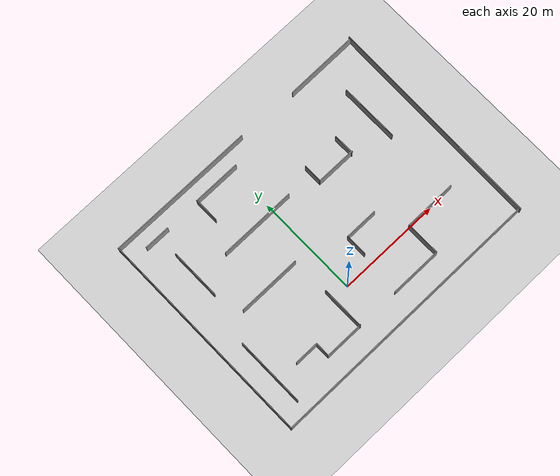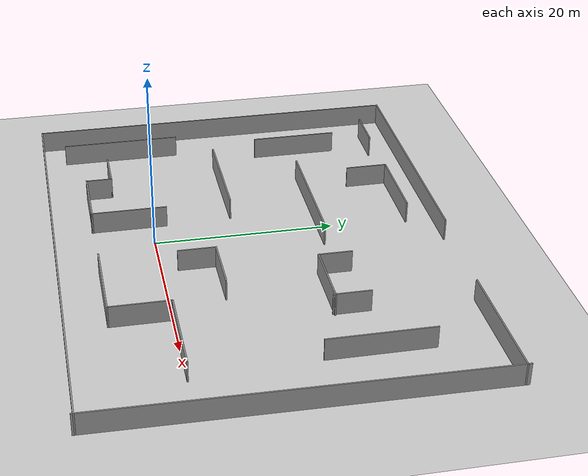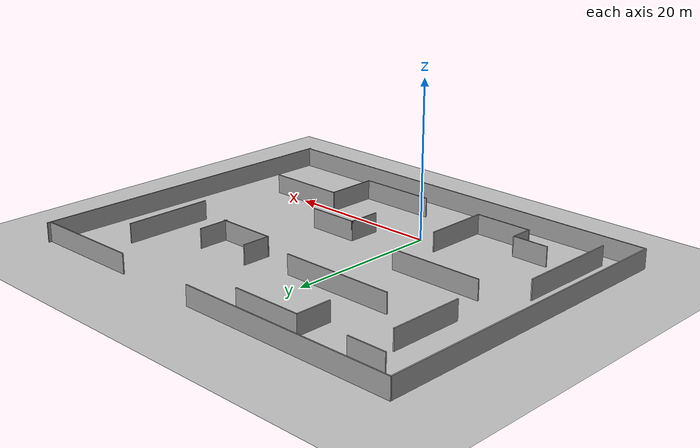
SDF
<sdf version="1.6">
 <world name="default">
  <light name="sun" type="directional">
   <pose>0 0 10 0 -0 0</pose>
   <diffuse>0.8 0.8 0.8 1</diffuse>
   <specular>0.2 0.2 0.2 1</specular>
   <attenuation>
    <range>1000</range>
    <constant>0.9</constant>
    <linear>0.01</linear>
    <quadratic>0.001</quadratic>
   </attenuation>
   <direction>-0.5 0.1 -0.9</direction>
  </light>
  <model name="ground_plane">
   <static>1</static>
   <link name="link">
    <collision name="collision">
     <geometry><plane><normal>0 0 1</normal><size>100 100</size></plane></geometry>
     <surface>
      <contact><collide_bitmask>65535</collide_bitmask></contact>
      <friction><ode><mu>100</mu><mu2>50</mu2></ode></friction>
     </surface>
    </collision>
    <visual name="visual">
     <cast_shadows>0</cast_shadows>
     <geometry><plane><normal>0 0 1</normal><size>100 100</size></plane></geometry>
     <material>
      <script><uri>file://media/materials/scripts/gazebo.material</uri><name>Gazebo/Grey</name></script>
     </material>
    </visual>
   </link>
  </model>
  <gravity>0 0 -9.8</gravity>
  <magnetic_field>6e-06 2.3e-05 -4.2e-05</magnetic_field>
  <atmosphere type="adiabatic"/>
  <physics name="default_physics" default="0" type="ode">
   <max_step_size>0.001</max_step_size>
   <real_time_factor>1</real_time_factor>
   <real_time_update_rate>1000</real_time_update_rate>
  </physics>
  <scene><ambient>0.4 0.4 0.4 1</ambient><background>0.7 0.7 0.7 1</background><shadows>1</shadows></scene>
  <spherical_coordinates>
   <surface_model>EARTH_WGS84</surface_model>
   <latitude_deg>0</latitude_deg>
   <longitude_deg>0</longitude_deg>
   <elevation>0</elevation>
   <heading_deg>0</heading_deg>
  </spherical_coordinates>
  <model name="Untitled">
   <pose>3.70231 10.2651 0 0 -0 0</pose>
   <link name="Wall_1">
    <collision name="Wall_1_Collision">
     <geometry><box><size>43.0154 0.15 2.5</size></box></geometry>
     <pose>0 0 1.25 0 -0 0</pose>
    </collision>
    <visual name="Wall_1_Visual">
     <pose>0 0 1.25 0 -0 0</pose>
     <geometry><box><size>43.0154 0.15 2.5</size></box></geometry>
     <material>
      <script><uri>file://media/materials/scripts/gazebo.material</uri><name>Gazebo/Grey</name></script>
      <ambient>1 1 1 1</ambient>
     </material>
     <meta><layer>0</layer></meta>
    </visual>
    <pose>27.1722 0 0 0 -0 -1.58648</pose>
   </link>
   <link name="Wall_11">
    <collision name="Wall_11_Collision">
     <geometry><box><size>4.25 0.15 2.5</size></box></geometry>
     <pose>0 0 1.25 0 -0 0</pose>
    </collision>
    <visual name="Wall_11_Visual">
     <pose>0 0 1.25 0 -0 0</pose>
     <geometry><box><size>4.25 0.15 2.5</size></box></geometry>
     <material>
      <script><uri>file://media/materials/scripts/gazebo.material</uri><name>Gazebo/Grey</name></script>
      <ambient>1 1 1 1</ambient>
     </material>
     <meta><layer>0</layer></meta>
    </visual>
    <pose>2.08355 -6.37855 0 0 -0 1.5708</pose>
   </link>
   <link name="Wall_12">
    <collision name="Wall_12_Collision">
     <geometry><box><size>6.5 0.15 2.5</size></box></geometry>
     <pose>0 0 1.25 0 -0 0</pose>
    </collision>
    <visual name="Wall_12_Visual">
     <pose>0 0 1.25 0 -0 0</pose>
     <geometry><box><size>6.5 0.15 2.5</size></box></geometry>
     <material>
      <script><uri>file://media/materials/scripts/gazebo.material</uri><name>Gazebo/Grey</name></script>
      <ambient>1 1 1 1</ambient>
     </material>
     <meta><layer>0</layer></meta>
    </visual>
    <pose>5.25855 -4.32855 0 0 -0 0</pose>
   </link>
   <link name="Wall_19">
    <collision name="Wall_19_Collision">
     <geometry><box><size>14.4168 0.15 2.5</size></box></geometry>
     <pose>0 0 1.25 0 -0 0</pose>
    </collision>
    <visual name="Wall_19_Visual">
     <pose>0 0 1.25 0 -0 0</pose>
     <geometry><box><size>14.4168 0.15 2.5</size></box></geometry>
     <material>
      <script><uri>file://media/materials/scripts/gazebo.material</uri><name>Gazebo/Grey</name></script>
      <ambient>1 1 1 1</ambient>
     </material>
     <meta><layer>0</layer></meta>
    </visual>
    <pose>20.3752 20.9955 0 0 -0 -3.13314</pose>
   </link>
   <link name="Wall_25">
    <collision name="Wall_25_Collision">
     <geometry><box><size>13.5 0.15 2.5</size></box></geometry>
     <pose>0 0 1.25 0 -0 0</pose>
    </collision>
    <visual name="Wall_25_Visual">
     <pose>0 0 1.25 0 -0 0</pose>
     <geometry><box><size>13.5 0.15 2.5</size></box></geometry>
     <material>
      <script><uri>file://media/materials/scripts/gazebo.material</uri><name>Gazebo/Grey</name></script>
      <ambient>1 1 1 1</ambient>
     </material>
     <meta><layer>0</layer></meta>
    </visual>
    <pose>-23.5603 -11.9274 0 0 -0 1.5708</pose>
   </link>
   <link name="Wall_29">
    <collision name="Wall_29_Collision">
     <geometry><box><size>12.25 0.15 2.5</size></box></geometry>
     <pose>0 0 1.25 0 -0 0</pose>
    </collision>
    <visual name="Wall_29_Visual">
     <pose>0 0 1.25 0 -0 0</pose>
     <geometry><box><size>12.25 0.15 2.5</size></box></geometry>
     <material>
      <script><uri>file://media/materials/scripts/gazebo.material</uri><name>Gazebo/Grey</name></script>
      <ambient>1 1 1 1</ambient>
     </material>
     <meta><layer>0</layer></meta>
    </visual>
    <pose>-13.4644 -1.18297 0 0 -0 0</pose>
   </link>
   <link name="Wall_31">
    <collision name="Wall_31_Collision">
     <geometry><box><size>15 0.15 2.5</size></box></geometry>
     <pose>0 0 1.25 0 -0 0</pose>
    </collision>
    <visual name="Wall_31_Visual">
     <pose>0 0 1.25 0 -0 0</pose>
     <geometry><box><size>15 0.15 2.5</size></box></geometry>
     <material>
      <script><uri>file://media/materials/scripts/gazebo.material</uri><name>Gazebo/Grey</name></script>
      <ambient>1 1 1 1</ambient>
     </material>
     <meta><layer>0</layer></meta>
    </visual>
    <pose>-7.46753 8.10342 0 0 -0 0</pose>
   </link>
   <link name="Wall_33">
    <collision name="Wall_33_Collision">
     <geometry><box><size>9.75 0.15 2.5</size></box></geometry>
     <pose>0 0 1.25 0 -0 0</pose>
    </collision>
    <visual name="Wall_33_Visual">
     <pose>0 0 1.25 0 -0 0</pose>
     <geometry><box><size>9.75 0.15 2.5</size></box></geometry>
     <material>
      <script><uri>file://media/materials/scripts/gazebo.material</uri><name>Gazebo/Grey</name></script>
      <ambient>1 1 1 1</ambient>
     </material>
     <meta><layer>0</layer></meta>
    </visual>
    <pose>-21.1585 9.0809 0 0 -0 -1.5708</pose>
   </link>
   <link name="Wall_37">
    <collision name="Wall_37_Collision">
     <geometry><box><size>3.5872 0.15 2.5</size></box></geometry>
     <pose>0 0 1.25 0 -0 0</pose>
    </collision>
    <visual name="Wall_37_Visual">
     <pose>0 0 1.25 0 -0 0</pose>
     <geometry><box><size>3.5872 0.15 2.5</size></box></geometry>
     <material>
      <script><uri>file://media/materials/scripts/gazebo.material</uri><name>Gazebo/Grey</name></script>
      <ambient>1 1 1 1</ambient>
     </material>
     <meta><layer>0</layer></meta>
    </visual>
    <pose>5.54394 7.96889 0 0 -0 -1.5708</pose>
   </link>
   <link name="Wall_38">
    <collision name="Wall_38_Collision">
     <geometry><box><size>7.80888 0.15 2.5</size></box></geometry>
     <pose>0 0 1.25 0 -0 0</pose>
    </collision>
    <visual name="Wall_38_Visual">
     <pose>0 0 1.25 0 -0 0</pose>
     <geometry><box><size>7.80888 0.15 2.5</size></box></geometry>
     <material>
      <script><uri>file://media/materials/scripts/gazebo.material</uri><name>Gazebo/Grey</name></script>
      <ambient>1 1 1 1</ambient>
     </material>
     <meta><layer>0</layer></meta>
    </visual>
    <pose>9.37338 6.08755 0 0 -0 0</pose>
   </link>
   <link name="Wall_39">
    <collision name="Wall_39_Collision">
     <geometry><box><size>4.0872 0.15 2.5</size></box></geometry>
     <pose>0 0 1.25 0 -0 0</pose>
    </collision>
    <visual name="Wall_39_Visual">
     <pose>0 0 1.25 0 -0 0</pose>
     <geometry><box><size>4.0872 0.15 2.5</size></box></geometry>
     <material>
      <script><uri>file://media/materials/scripts/gazebo.material</uri><name>Gazebo/Grey</name></script>
      <ambient>1 1 1 1</ambient>
     </material>
     <meta><layer>0</layer></meta>
    </visual>
    <pose>13.0401 7.89341 0 0 -0 1.5708</pose>
   </link>
   <link name="Wall_44">
    <collision name="Wall_44_Collision">
     <geometry><box><size>5 0.15 2.5</size></box></geometry>
     <pose>0 0 1.25 0 -0 0</pose>
    </collision>
    <visual name="Wall_44_Visual">
     <pose>0 0 1.25 0 -0 0</pose>
     <geometry><box><size>5 0.15 2.5</size></box></geometry>
     <material>
      <script><uri>file://media/materials/scripts/gazebo.material</uri><name>Gazebo/Grey</name></script>
      <ambient>1 1 1 1</ambient>
     </material>
     <meta><layer>0</layer></meta>
    </visual>
    <pose>-21.5262 18.1838 0 0 -0 0</pose>
   </link>
   <link name="Wall_46">
    <collision name="Wall_46_Collision">
     <geometry><box><size>29 0.15 2.5</size></box></geometry>
     <pose>0 0 1.25 0 -0 0</pose>
    </collision>
    <visual name="Wall_46_Visual">
     <pose>0 0 1.25 0 -0 0</pose>
     <geometry><box><size>29 0.15 2.5</size></box></geometry>
     <material>
      <script><uri>file://media/materials/scripts/gazebo.material</uri><name>Gazebo/Grey</name></script>
      <ambient>1 1 1 1</ambient>
     </material>
     <meta><layer>0</layer></meta>
    </visual>
    <pose>-13.0845 21.377 0 0 -0 3.14159</pose>
   </link>
   <link name="Wall_47">
    <collision name="Wall_47_Collision">
     <geometry><box><size>42.75 0.15 2.5</size></box></geometry>
     <pose>0 0 1.25 0 -0 0</pose>
    </collision>
    <visual name="Wall_47_Visual">
     <pose>0 0 1.25 0 -0 0</pose>
     <geometry><box><size>42.75 0.15 2.5</size></box></geometry>
     <material>
      <script><uri>file://media/materials/scripts/gazebo.material</uri><name>Gazebo/Grey</name></script>
      <ambient>1 1 1 1</ambient>
     </material>
     <meta><layer>0</layer></meta>
    </visual>
    <pose>-27.5095 0.076975 0 0 -0 -1.5708</pose>
   </link>
   <link name="Wall_54">
    <collision name="Wall_54_Collision">
     <geometry><box><size>54.5 0.15 2.5</size></box></geometry>
     <pose>0 0 1.25 0 -0 0</pose>
    </collision>
    <visual name="Wall_54_Visual">
     <pose>0 0 1.25 0 -0 0</pose>
     <geometry><box><size>54.5 0.15 2.5</size></box></geometry>
     <material>
      <script><uri>file://media/materials/scripts/gazebo.material</uri><name>Gazebo/Grey</name></script>
      <ambient>1 1 1 1</ambient>
     </material>
     <meta><layer>0</layer></meta>
    </visual>
    <pose>-0.334496 -21.223 0 0 -0 0</pose>
   </link>
   <link name="Wall_56">
    <collision name="Wall_56_Collision">
     <geometry><box><size>11.5 0.15 2.5</size></box></geometry>
     <pose>0 0 1.25 0 -0 0</pose>
    </collision>
    <visual name="Wall_56_Visual">
     <pose>0 0 1.25 0 -0 0</pose>
     <geometry><box><size>11.5 0.15 2.5</size></box></geometry>
     <material>
      <script><uri>file://media/materials/scripts/gazebo.material</uri><name>Gazebo/Grey</name></script>
      <ambient>1 1 1 1</ambient>
     </material>
     <meta><layer>0</layer></meta>
    </visual>
    <pose>20.2685 8.99066 0 0 -0 -1.5708</pose>
   </link>
   <link name="Wall_58">
    <collision name="Wall_58_Collision">
     <geometry><box><size>9.25 0.15 2.5</size></box></geometry>
     <pose>0 0 1.25 0 -0 0</pose>
    </collision>
    <visual name="Wall_58_Visual">
     <pose>0 0 1.25 0 -0 0</pose>
     <geometry><box><size>9.25 0.15 2.5</size></box></geometry>
     <material>
      <script><uri>file://media/materials/scripts/gazebo.material</uri><name>Gazebo/Grey</name></script>
      <ambient>1 1 1 1</ambient>
     </material>
     <meta><layer>0</layer></meta>
    </visual>
    <pose>-7.55348 18.246 0 0 -0 3.14159</pose>
   </link>
   <link name="Wall_59">
    <collision name="Wall_59_Collision">
     <geometry><box><size>4.75 0.15 2.5</size></box></geometry>
     <pose>0 0 1.25 0 -0 0</pose>
    </collision>
    <visual name="Wall_59_Visual">
     <pose>0 0 1.25 0 -0 0</pose>
     <geometry><box><size>4.75 0.15 2.5</size></box></geometry>
     <material>
      <script><uri>file://media/materials/scripts/gazebo.material</uri><name>Gazebo/Grey</name></script>
      <ambient>1 1 1 1</ambient>
     </material>
     <meta><layer>0</layer></meta>
    </visual>
    <pose>-12.1035 15.946 0 0 -0 -1.5708</pose>
   </link>
   <link name="Wall_6">
    <collision name="Wall_6_Collision">
     <geometry><box><size>4.75 0.15 2.5</size></box></geometry>
     <pose>0 0 1.25 0 -0 0</pose>
    </collision>
    <visual name="Wall_6_Visual">
     <pose>0 0 1.25 0 -0 0</pose>
     <geometry><box><size>4.75 0.15 2.5</size></box></geometry>
     <material>
      <script><uri>file://media/materials/scripts/gazebo.material</uri><name>Gazebo/Grey</name></script>
      <ambient>1 1 1 1</ambient>
     </material>
     <meta><layer>0</layer></meta>
    </visual>
    <pose>-16.9164 -13.9285 0 0 -0 0</pose>
   </link>
   <link name="Wall_61">
    <collision name="Wall_61_Collision">
     <geometry><box><size>10.25 0.15 2.5</size></box></geometry>
     <pose>0 0 1.25 0 -0 0</pose>
    </collision>
    <visual name="Wall_61_Visual">
     <pose>0 0 1.25 0 -0 0</pose>
     <geometry><box><size>10.25 0.15 2.5</size></box></geometry>
     <material>
      <script><uri>file://media/materials/scripts/gazebo.material</uri><name>Gazebo/Grey</name></script>
      <ambient>1 1 1 1</ambient>
     </material>
     <meta><layer>0</layer></meta>
    </visual>
    <pose>16.0974 -10.1966 0 0 -0 3.14159</pose>
   </link>
   <link name="Wall_62">
    <collision name="Wall_62_Collision">
     <geometry><box><size>6.75 0.15 2.5</size></box></geometry>
     <pose>0 0 1.25 0 -0 0</pose>
    </collision>
    <visual name="Wall_62_Visual">
     <pose>0 0 1.25 0 -0 0</pose>
     <geometry><box><size>6.75 0.15 2.5</size></box></geometry>
     <material>
      <script><uri>file://media/materials/scripts/gazebo.material</uri><name>Gazebo/Grey</name></script>
      <ambient>1 1 1 1</ambient>
     </material>
     <meta><layer>0</layer></meta>
    </visual>
    <pose>11.0474 -13.4966 0 0 -0 -1.5708</pose>
   </link>
   <link name="Wall_63">
    <collision name="Wall_63_Collision">
     <geometry><box><size>10 0.15 2.5</size></box></geometry>
     <pose>0 0 1.25 0 -0 0</pose>
    </collision>
    <visual name="Wall_63_Visual">
     <pose>0 0 1.25 0 -0 0</pose>
     <geometry><box><size>10 0.15 2.5</size></box></geometry>
     <material>
      <script><uri>file://media/materials/scripts/gazebo.material</uri><name>Gazebo/Grey</name></script>
      <ambient>1 1 1 1</ambient>
     </material>
     <meta><layer>0</layer></meta>
    </visual>
    <pose>6.12244 -16.7966 0 0 -0 3.14159</pose>
   </link>
   <link name="Wall_7">
    <collision name="Wall_7_Collision">
     <geometry><box><size>3 0.15 2.5</size></box></geometry>
     <pose>0 0 1.25 0 -0 0</pose>
    </collision>
    <visual name="Wall_7_Visual">
     <pose>0 0 1.25 0 -0 0</pose>
     <geometry><box><size>3 0.15 2.5</size></box></geometry>
     <material>
      <script><uri>file://media/materials/scripts/gazebo.material</uri><name>Gazebo/Grey</name></script>
      <ambient>1 1 1 1</ambient>
     </material>
     <meta><layer>0</layer></meta>
    </visual>
    <pose>-14.6164 -15.3535 0 0 -0 -1.5708</pose>
   </link>
   <link name="Wall_8">
    <collision name="Wall_8_Collision">
     <geometry><box><size>7.66084 0.15 2.5</size></box></geometry>
     <pose>0 0 1.25 0 -0 0</pose>
    </collision>
    <visual name="Wall_8_Visual">
     <pose>0 0 1.25 0 -0 0</pose>
     <geometry><box><size>7.66084 0.15 2.5</size></box></geometry>
     <material>
      <script><uri>file://media/materials/scripts/gazebo.material</uri><name>Gazebo/Grey</name></script>
      <ambient>1 1 1 1</ambient>
     </material>
     <meta><layer>0</layer></meta>
    </visual>
    <pose>-10.861 -16.7785 0 0 -0 0</pose>
   </link>
   <link name="Wall_9">
    <collision name="Wall_9_Collision">
     <geometry><box><size>8.5 0.15 2.5</size></box></geometry>
     <pose>0 0 1.25 0 -0 0</pose>
    </collision>
    <visual name="Wall_9_Visual">
     <pose>0 0 1.25 0 -0 0</pose>
     <geometry><box><size>8.5 0.15 2.5</size></box></geometry>
     <material>
      <script><uri>file://media/materials/scripts/gazebo.material</uri><name>Gazebo/Grey</name></script>
      <ambient>1 1 1 1</ambient>
     </material>
     <meta><layer>0</layer></meta>
    </visual>
    <pose>-7.18652 -12.6845 0 0 -0 1.5708</pose>
   </link>
   <static>1</static>
  </model>
 </world>
</sdf>
